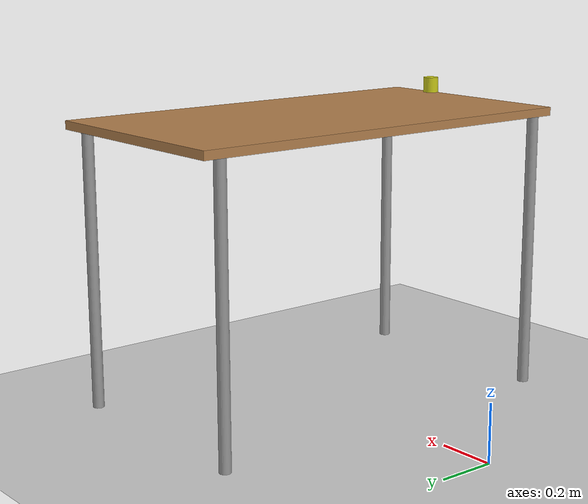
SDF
<?xml version="1.0"?>
<sdf version="1.6">
  <world name="default">
  <plugin
    filename="gz-sim-physics-system"
    name="gz::sim::systems::Physics">
  </plugin>
  <plugin
    filename="gz-sim-user-commands-system"
    name="gz::sim::systems::UserCommands">
  </plugin>
  <plugin
    filename="gz-sim-scene-broadcaster-system"
    name="gz::sim::systems::SceneBroadcaster">
  </plugin>
  <plugin
    filename="gz-sim-sensors-system"
    name="gz::sim::systems::Sensors">
    <render_engine>ogre2</render_engine>
  </plugin>
  <plugin
    filename="gz-sim-imu-system"
    name="gz::sim::systems::Imu">
  </plugin>

    <include>
      <uri>https://fuel.gazebosim.org/1.0/OpenRobotics/models/Ground Plane</uri>
    </include>

    <include>
      <uri>https://fuel.gazebosim.org/1.0/OpenRobotics/models/Sun</uri>
    </include>

    <scene>
      <shadows>false</shadows>
    </scene>

    <gui fullscreen='0'>
      <camera name='user_camera'>
        <pose frame=''>0.319654 -0.235002 9.29441 0 1.5138 0.009599</pose>
        <view_controller>orbit</view_controller>
        <projection_type>perspective</projection_type>
      </camera>
    </gui>

    <physics type="ode">
      <real_time_update_rate>1000.0</real_time_update_rate>
      <max_step_size>0.001</max_step_size>
      <real_time_factor>1</real_time_factor>
      <ode>
        <solver>
          <type>quick</type>
          <iters>150</iters>
          <precon_iters>0</precon_iters>
          <sor>1.400000</sor>
          <use_dynamic_moi_rescaling>1</use_dynamic_moi_rescaling>
        </solver>
        <constraints>
          <cfm>0.00001</cfm>
          <erp>0.2</erp>
          <contact_max_correcting_vel>2000.000000</contact_max_correcting_vel>
          <contact_surface_layer>0.01000</contact_surface_layer>
        </constraints>
      </ode>
    </physics>

    <include>
      <uri>model://table</uri>
      <name>table</name>
      <pose>0.85 0.0 0 0 0 -1.570800</pose>
    </include>

    <include>
      <uri>model://yellow_cylinder</uri>
      <name>can</name>
      <pose>0.6 -0.3 1.1150 0 0 0</pose>
    </include>

  </world>
</sdf>

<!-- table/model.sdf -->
<sdf version="1.5">
  <model name="table">
    <static>true</static>
    <link name="link">
      <collision name="surface">
        <pose>0 0 1.0 0 0 0</pose>
        <geometry>
          <box>
            <size>1.5 0.8 0.03</size>
          </box>
        </geometry>
        <surface>
          <friction>
            <ode>
              <mu>0.6</mu>
              <mu2>0.6</mu2>
            </ode>
          </friction>
        </surface>
      </collision>
      <visual name="visual1">
        <pose>0 0 1.0 0 0 0</pose>
        <geometry>
          <box>
            <size>1.5 0.8 0.03</size>
          </box>
        </geometry>
        <material>
          <script>
            <uri>model://media/materials/scripts/gazebo.material</uri>
            <name>Gazebo/Wood</name>
          </script>
        </material>
      </visual>
      <collision name="front_left_leg">
        <pose>0.68 0.38 0.5 0 0 0</pose>
        <geometry>
          <cylinder>
            <radius>0.02</radius>
            <length>1.0</length>
          </cylinder>
        </geometry>
      </collision>
      <visual name="front_left_leg">
        <pose>0.68 0.38 0.5 0 0 0</pose>
        <geometry>
          <cylinder>
            <radius>0.02</radius>
            <length>1.0</length>
          </cylinder>
        </geometry>
        <material>
          <script>
            <uri>model://media/materials/scripts/gazebo.material</uri>
            <name>Gazebo/Grey</name>
          </script>
        </material>
      </visual>
      <collision name="front_right_leg">
        <pose>0.68 -0.38 0.5 0 0 0</pose>
        <geometry>
          <cylinder>
            <radius>0.02</radius>
            <length>1.0</length>
          </cylinder>
        </geometry>
      </collision>
      <visual name="front_right_leg">
        <pose>0.68 -0.38 0.5 0 0 0</pose>
        <geometry>
          <cylinder>
            <radius>0.02</radius>
            <length>1.0</length>
          </cylinder>
        </geometry>
        <material>
          <script>
            <uri>model://media/materials/scripts/gazebo.material</uri>
            <name>Gazebo/Grey</name>
          </script>
        </material>
      </visual>
      <collision name="back_right_leg">
        <pose>-0.68 -0.38 0.5 0 0 0</pose>
        <geometry>
          <cylinder>
            <radius>0.02</radius>
            <length>1.0</length>
          </cylinder>
        </geometry>
      </collision>
      <visual name="back_right_leg">
        <pose>-0.68 -0.38 0.5 0 0 0</pose>
        <geometry>
          <cylinder>
            <radius>0.02</radius>
            <length>1.0</length>
          </cylinder>
        </geometry>
        <material>
          <script>
            <uri>model://media/materials/scripts/gazebo.material</uri>
            <name>Gazebo/Grey</name>
          </script>
        </material>
      </visual>
      <collision name="back_left_leg">
        <pose>-0.68 0.38 0.5 0 0 0</pose>
        <geometry>
          <cylinder>
            <radius>0.02</radius>
            <length>1.0</length>
          </cylinder>
        </geometry>
      </collision>
      <visual name="back_left_leg">
        <pose>-0.68 0.38 0.5 0 0 0</pose>
        <geometry>
          <cylinder>
            <radius>0.02</radius>
            <length>1.0</length>
          </cylinder>
        </geometry>
        <material>
          <script>
            <uri>model://media/materials/scripts/gazebo.material</uri>
            <name>Gazebo/Grey</name>
          </script>
        </material>
      </visual>
    </link>
  </model>
</sdf>

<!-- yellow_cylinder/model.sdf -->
<sdf version="1.9">
  <model name="yellow_cylinder">
    <pose>0 0 0 0 0 0</pose>
    <link name="link">
      <inertial><mass>0.1</mass><inertia><ixx>2.5e-5</ixx><iyy>2.5e-5</iyy><izz>1.25e-5</izz></inertia></inertial>
      <collision name="collision"><geometry><cylinder><radius>0.025</radius><length>0.05</length></cylinder></geometry><surface><friction><ode><mu>0.6</mu><mu2>0.6</mu2></ode></friction></surface></collision>
      <visual name="visual"><geometry><cylinder><radius>0.025</radius><length>0.05</length></cylinder></geometry><material><ambient>0.8 0.8 0.1 1</ambient><diffuse>0.8 0.8 0.1 1</diffuse></material></visual>
    </link>
  </model>
</sdf>
